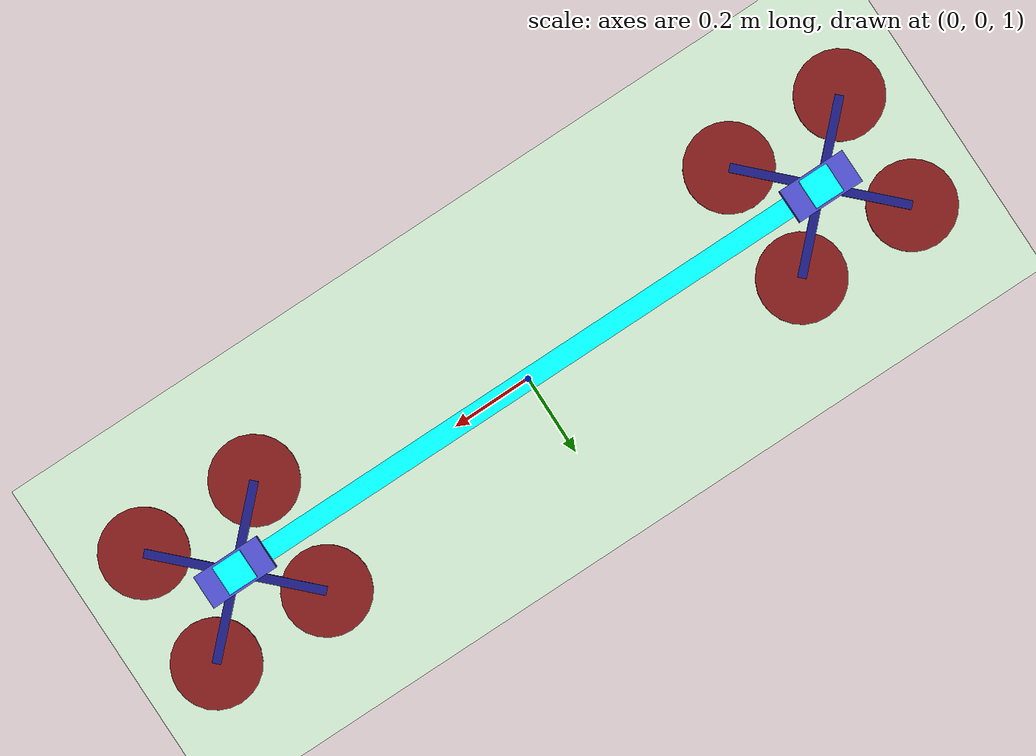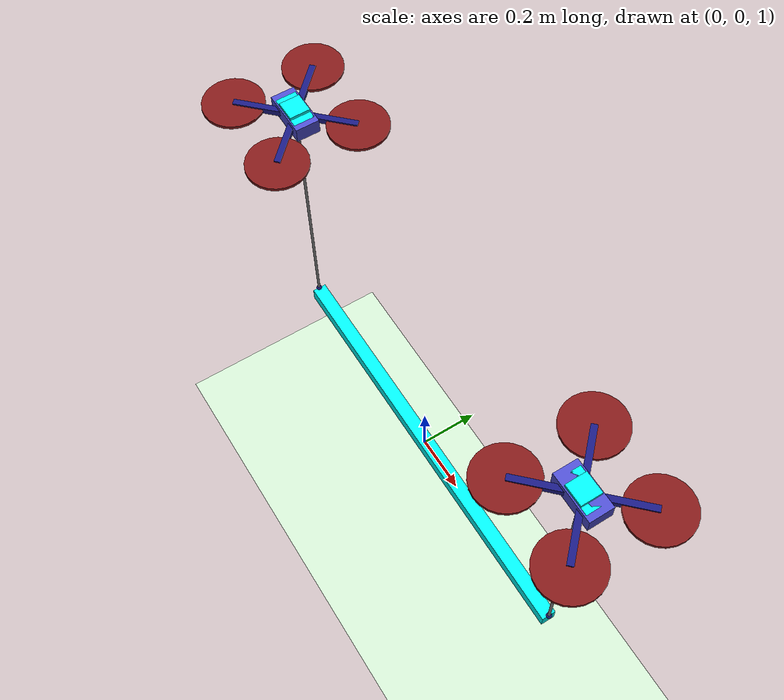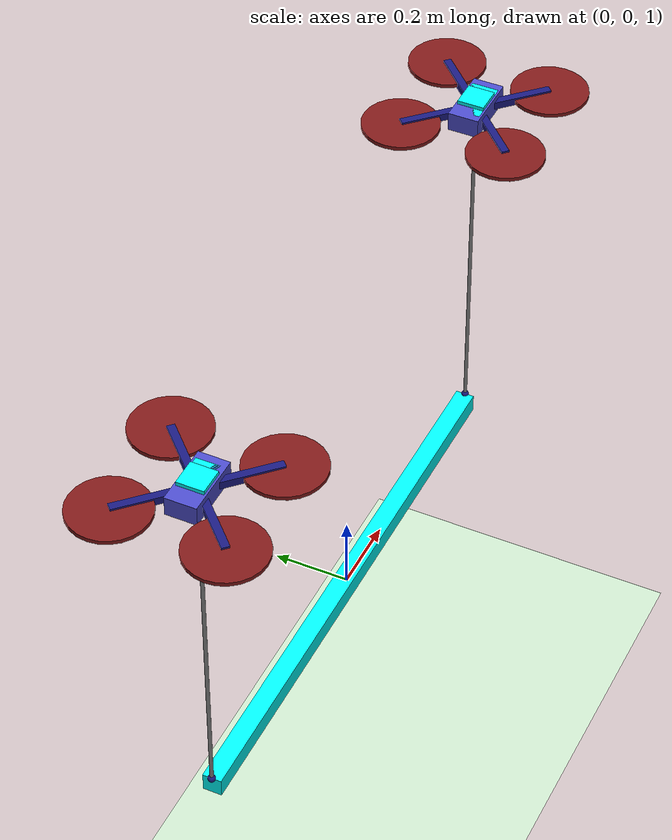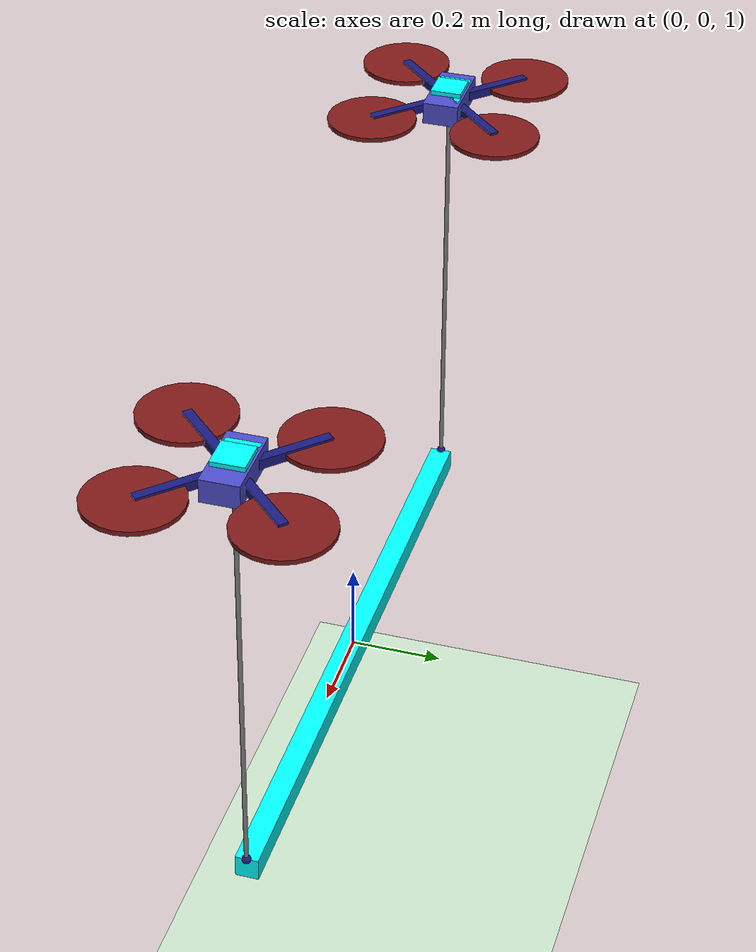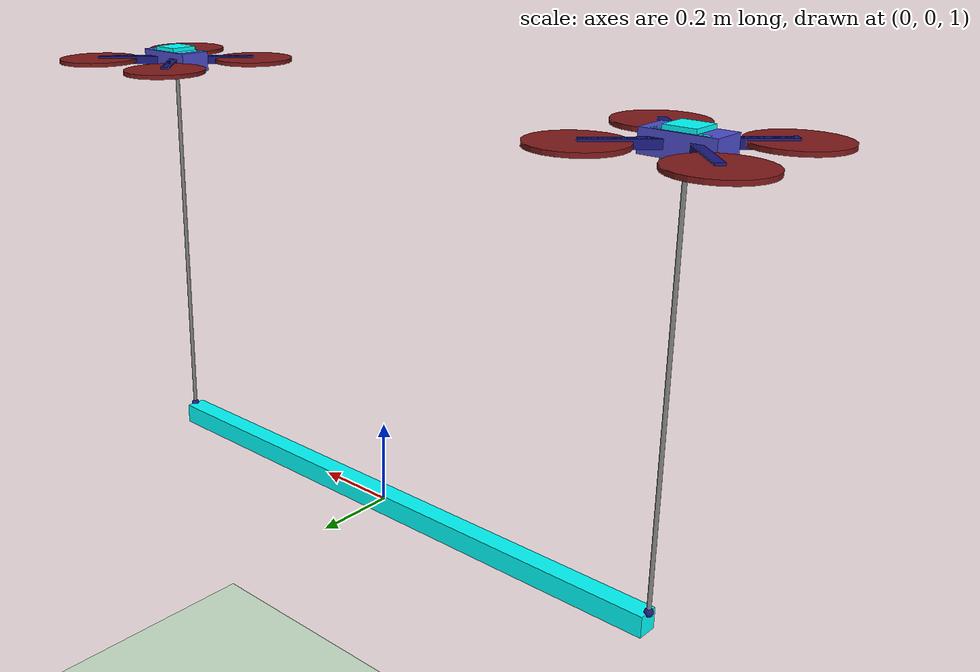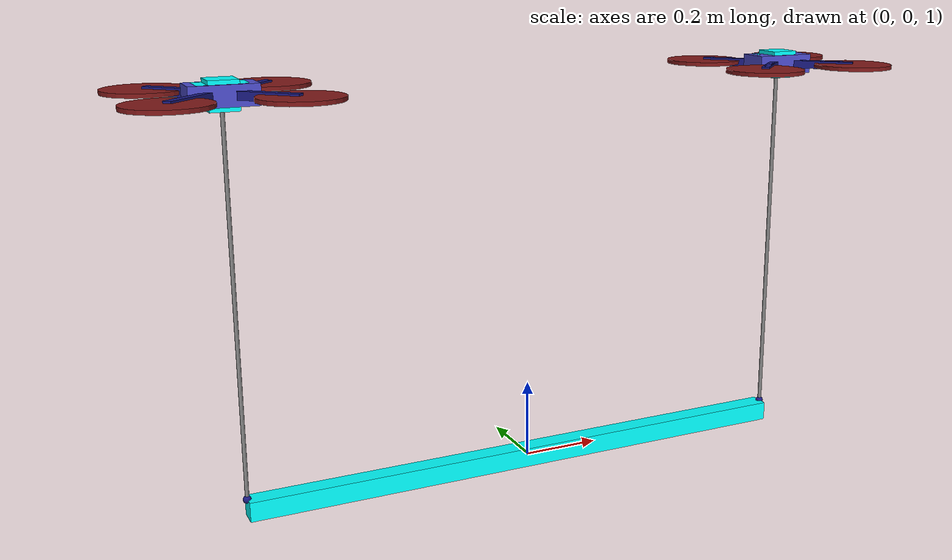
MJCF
<?xml version="1.0" ?>
<mujoco model="Quadcopter">
   <compiler angle="degree" coordinate="local" inertiafromgeom="true"/>
   <visual>
      <map fogstart="3.0" fogend="5.0" force="0.1" znear="0.1"/>
   </visual>
   <asset>
      <texture type="skybox" builtin="gradient" rgb1="1.0 1.0 1.0" rgb2="0.6 0.8 1.0" width="127" height="1278"/>
      <texture name="texplane" type="2d" builtin="checker" rgb1="0.2 0.3 0.4" rgb2=".1 0.15 0.2" width="512" height="512"/>
      <material name="MatPlane" texture="texplane" reflectance="0.5" texrepeat="1 1" texuniform="true"/>
   </asset>
   <worldbody>
      <geom name="ground" type="plane" size="5.0 5.0 0.02" friction="1.0" pos="0.0 0.0 0.0" rgba="0.8 0.9 0.8 1.0" material="MatPlane"/>
      <light directional="true" diffuse=".9 .9 .9" specular=".3 .3 .3" pos="0 0 4.0" dir="0 0.15 -1"/>
      <body name="quad1" pos="0.75 0.0 2.0" quat="1 0 0 0">
         <geom name="quad1_geom" type="box" pos="0.0 0.0 0.0" quat="1 0 0 0" size="0.08 0.04 0.025" mass="0.75" density="1000" rgba="0.3 0.3 0.8 1.0"/>
         <joint name="quad1_root_joint" type="free"/>
         <geom name="quad1_rotor_arm_geom_0" type="box" pos="0.0 0.0 0.0" quat="0.92388 0 0 0.382683" size="0.2 0.01 0.01" mass="0.01" density="1000" rgba="0.1 0.1 0.5 1.0"/>
         <geom name="quad1_rotor_prop_geom_0" type="cylinder" size="0.1 0.005" pos="0.1414213562373095 0.14142135623730953 0.0" mass="0.05" density="1000" rgba="0.5 0.1 0.1 1.0"/>
         <geom name="quad1_rotor_arm_geom_1" type="box" pos="0.0 0.0 0.0" quat="0.382683 0 0 0.92388" size="0.2 0.01 0.01" mass="0.01" density="1000" rgba="0.1 0.1 0.5 1.0"/>
         <geom name="quad1_rotor_prop_geom_1" type="cylinder" size="0.1 0.005" pos="-0.1414213562373095 0.14142135623730953 0.0" mass="0.05" density="1000" rgba="0.5 0.1 0.1 1.0"/>
         <geom name="quad1_rotor_arm_geom_2" type="box" pos="0.0 0.0 0.0" quat="-0.382683 0 0 0.92388" size="0.2 0.01 0.01" mass="0.01" density="1000" rgba="0.1 0.1 0.5 1.0"/>
         <geom name="quad1_rotor_prop_geom_2" type="cylinder" size="0.1 0.005" pos="-0.1414213562373095 -0.1414213562373095 0.0" mass="0.05" density="1000" rgba="0.5 0.1 0.1 1.0"/>
         <geom name="quad1_rotor_arm_geom_3" type="box" pos="0.0 0.0 0.0" quat="-0.92388 0 0 0.382683" size="0.2 0.01 0.01" mass="0.01" density="1000" rgba="0.1 0.1 0.5 1.0"/>
         <geom name="quad1_rotor_prop_geom_3" type="cylinder" size="0.1 0.005" pos="0.14142135623730948 -0.14142135623730956 0.0" mass="0.05" density="1000" rgba="0.5 0.1 0.1 1.0"/>
         <site name="quad1_end1" type="sphere" pos="0.0 0.0 0.0" quat="1 0 0 0" size="0.01" rgba="0.1 0.1 0.5 1.0"/>
         <site name="quad1_thrust" type="box" pos="0.0 0.0 0.0" quat="1 0 0 0" size="0.035 0.035 0.035" rgba="0.0 1 1 1.0"/>
         <site name="quad1_Mx" type="box" pos="0.0 0.0 0.0" quat="1 0 0 0" size="0.06 0.035 0.025" rgba="0.0 1 1 1.0"/>
         <site name="quad1_My" type="box" pos="0.0 0.0 0.0" quat="1 0 0 0" size="0.06 0.035 0.025" rgba="0.0 1 1 1.0"/>
         <site name="quad1_Mz" type="box" pos="0.0 0.0 0.0" quat="1 0 0 0" size="0.06 0.035 0.025" rgba="0.0 1 1 1.0"/>
      </body>
      <body name="quad2" pos="-0.75 0.0 2.0" quat="1 0 0 0">
         <geom name="quad2_geom" type="box" pos="0.0 0.0 0.0" quat="1 0 0 0" size="0.08 0.04 0.025" mass="0.75" density="1000" rgba="0.3 0.3 0.8 1.0"/>
         <joint name="quad2_root_joint" type="free"/>
         <geom name="quad2_rotor_arm_geom_0" type="box" pos="0.0 0.0 0.0" quat="0.92388 0 0 0.382683" size="0.2 0.01 0.01" mass="0.01" density="1000" rgba="0.1 0.1 0.5 1.0"/>
         <geom name="quad2_rotor_prop_geom_0" type="cylinder" size="0.1 0.005" pos="0.1414213562373095 0.14142135623730953 0.0" mass="0.05" density="1000" rgba="0.5 0.1 0.1 1.0"/>
         <geom name="quad2_rotor_arm_geom_1" type="box" pos="0.0 0.0 0.0" quat="0.382683 0 0 0.92388" size="0.2 0.01 0.01" mass="0.01" density="1000" rgba="0.1 0.1 0.5 1.0"/>
         <geom name="quad2_rotor_prop_geom_1" type="cylinder" size="0.1 0.005" pos="-0.1414213562373095 0.14142135623730953 0.0" mass="0.05" density="1000" rgba="0.5 0.1 0.1 1.0"/>
         <geom name="quad2_rotor_arm_geom_2" type="box" pos="0.0 0.0 0.0" quat="-0.382683 0 0 0.92388" size="0.2 0.01 0.01" mass="0.01" density="1000" rgba="0.1 0.1 0.5 1.0"/>
         <geom name="quad2_rotor_prop_geom_2" type="cylinder" size="0.1 0.005" pos="-0.1414213562373095 -0.1414213562373095 0.0" mass="0.05" density="1000" rgba="0.5 0.1 0.1 1.0"/>
         <geom name="quad2_rotor_arm_geom_3" type="box" pos="0.0 0.0 0.0" quat="-0.92388 0 0 0.382683" size="0.2 0.01 0.01" mass="0.01" density="1000" rgba="0.1 0.1 0.5 1.0"/>
         <geom name="quad2_rotor_prop_geom_3" type="cylinder" size="0.1 0.005" pos="0.14142135623730948 -0.14142135623730956 0.0" mass="0.05" density="1000" rgba="0.5 0.1 0.1 1.0"/>
         <site name="quad2_end1" type="sphere" pos="0.0 0.0 0.0" quat="1 0 0 0" size="0.01" rgba="0.1 0.1 0.5 1.0"/>
         <site name="quad2_thrust" type="box" pos="0.0 0.0 0.0" quat="1 0 0 0" size="0.035 0.035 0.035" rgba="0.0 1 1 1.0"/>
         <site name="quad2_Mx" type="box" pos="0.0 0.0 0.0" quat="1 0 0 0" size="0.06 0.035 0.025" rgba="0.0 1 1 1.0"/>
         <site name="quad2_My" type="box" pos="0.0 0.0 0.0" quat="1 0 0 0" size="0.06 0.035 0.025" rgba="0.0 1 1 1.0"/>
         <site name="quad2_Mz" type="box" pos="0.0 0.0 0.0" quat="1 0 0 0" size="0.06 0.035 0.025" rgba="0.0 1 1 1.0"/>
      </body>
      <body name="pyld" pos="0.0 0.0 1.0" quat="1 0 0 0">
         <geom name="pyld" type="box" pos="0.0 0.0 0.0" quat="1 0 0 0" size="0.75 0.025 0.025" mass="1.0" density="1000" rgba="0.0 1 1 1.0"/>
         <site name="pyld_poc1" type="sphere" pos="0.75 0.0 0.025" quat="1 0 0 0" size="0.01" rgba="0.1 0.1 0.5 1.0"/>
         <site name="pyld_poc2" type="sphere" pos="-0.75 0.0 0.025" quat="1 0 0 0" size="0.01" rgba="0.1 0.1 0.5 1.0"/>
         <joint name="pyld_joint" type="free"/>
      </body>
   </worldbody>
   <actuator>
      <motor ctrllimited="true" site="quad1_thrust" ctrlrange="0.0 30.0" gear="0.0 0.0 1.0 0.0 0.0 0.0"/>
      <motor ctrllimited="true" site="quad1_Mx" ctrlrange="-3.0 3.0" gear="0.0 0.0 0.0 1.0 0.0 0.0"/>
      <motor ctrllimited="true" site="quad1_My" ctrlrange="-3.0 3.0" gear="0.0 0.0 0.0 0.0 1.0 0.0"/>
      <motor ctrllimited="true" site="quad1_Mz" ctrlrange="-3.0 3.0" gear="0.0 0.0 0.0 0.0 0.0 1.0"/>
   </actuator>
   <actuator>
      <motor ctrllimited="true" site="quad2_thrust" ctrlrange="0.0 30.0" gear="0.0 0.0 1.0 0.0 0.0 0.0"/>
      <motor ctrllimited="true" site="quad2_Mx" ctrlrange="-3.0 3.0" gear="0.0 0.0 0.0 1.0 0.0 0.0"/>
      <motor ctrllimited="true" site="quad2_My" ctrlrange="-3.0 3.0" gear="0.0 0.0 0.0 0.0 1.0 0.0"/>
      <motor ctrllimited="true" site="quad2_Mz" ctrlrange="-3.0 3.0" gear="0.0 0.0 0.0 0.0 0.0 1.0"/>
   </actuator>
   <tendon>
      <spatial limited="true" range="0.0 1.0" width="0.005" damping="0.0" stiffness="0.0">
         <site site="quad1_end1"/>
         <site site="pyld_poc1"/>
      </spatial>
      <spatial limited="true" range="0.0 1.0" width="0.005" damping="0.0" stiffness="0.0">
         <site site="quad2_end1"/>
         <site site="pyld_poc2"/>
      </spatial>
   </tendon>
</mujoco>
